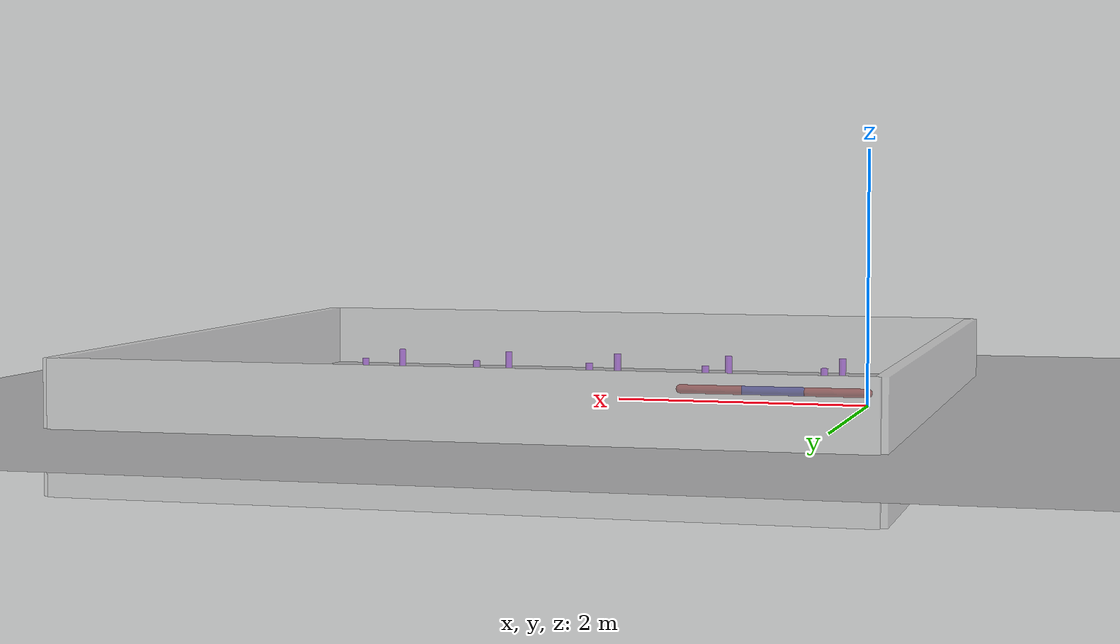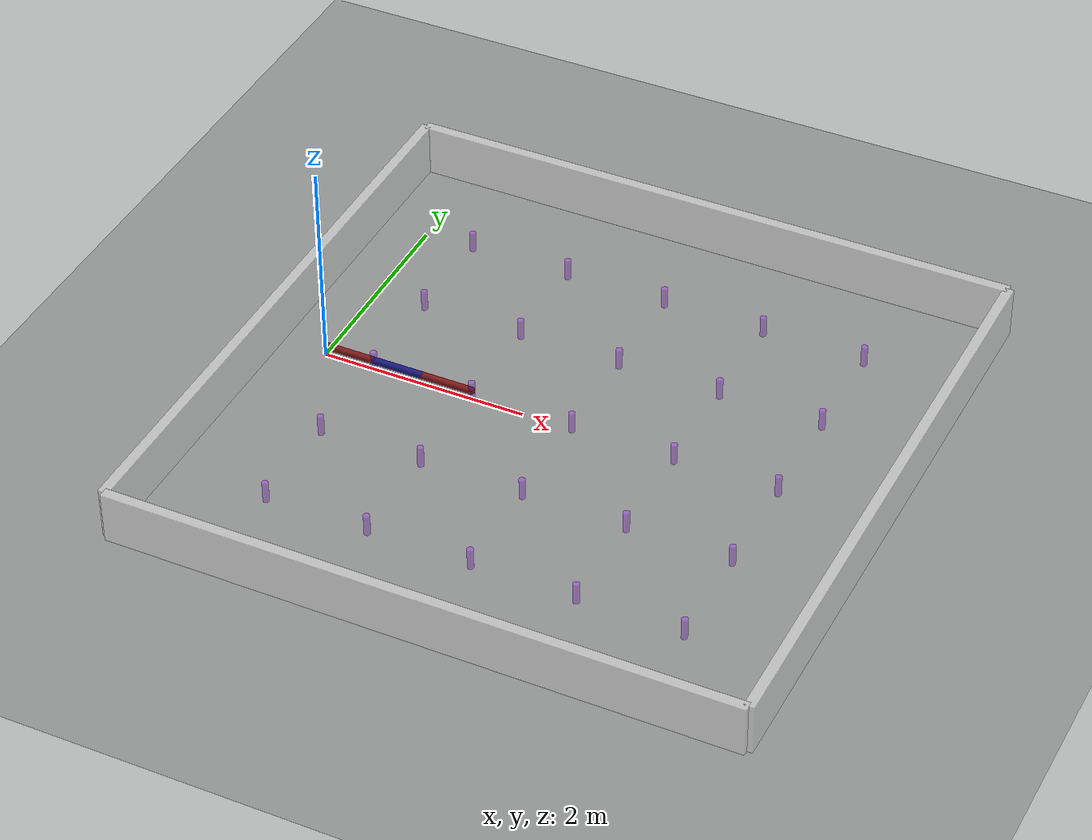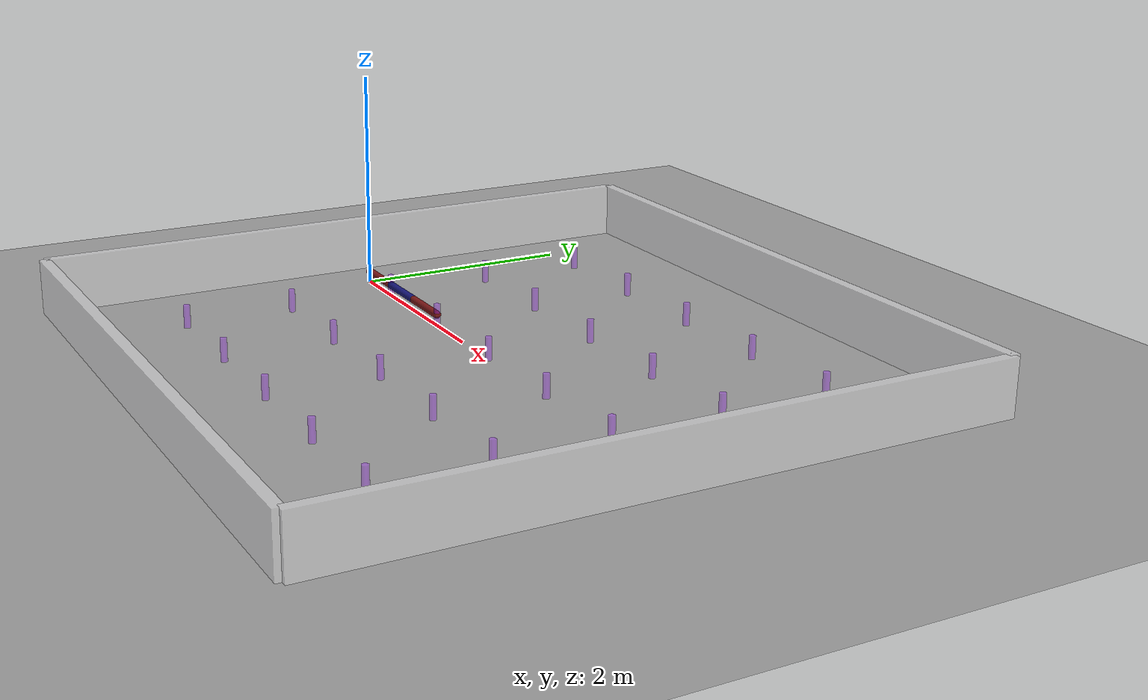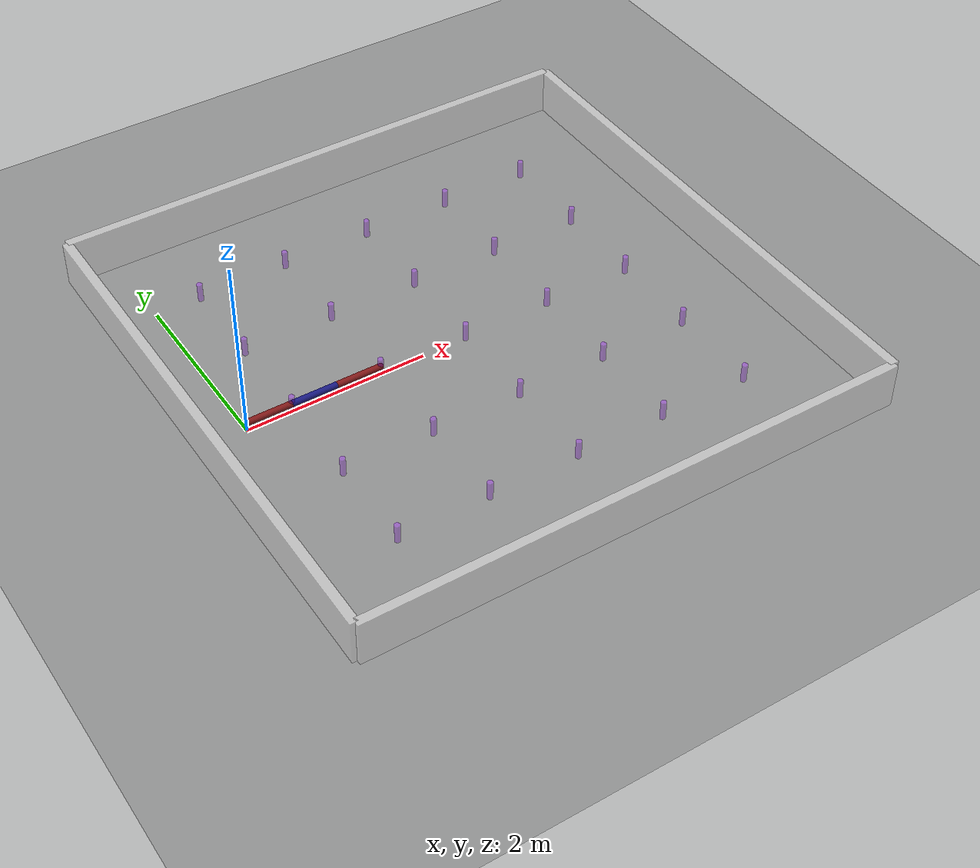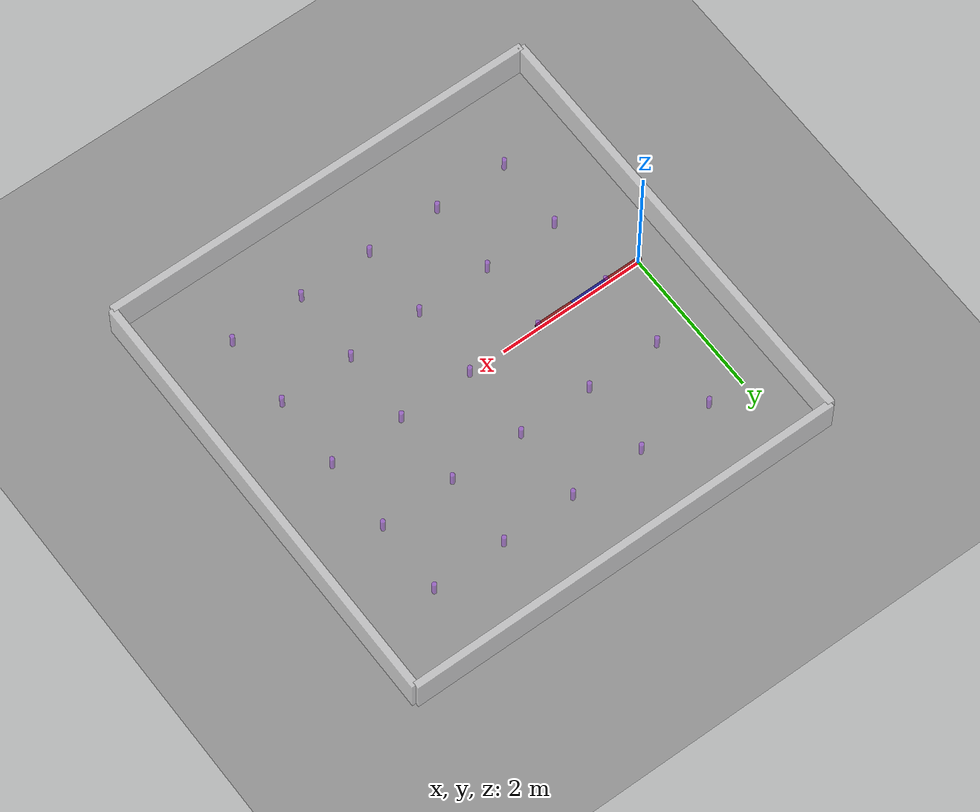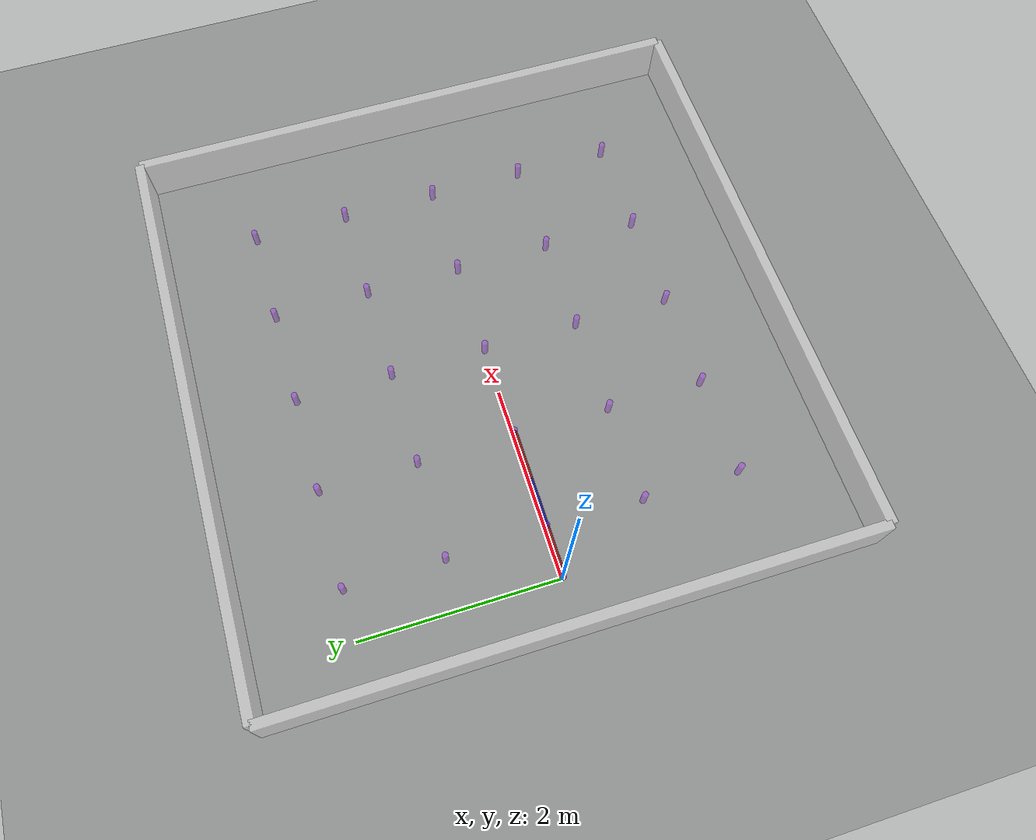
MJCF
<mujoco>
   <compiler angle="radian" />
    <option timestep="0.005" iterations="50" solver="Newton" tolerance="1e-10"/>

    <size njmax="50" nconmax="10" nstack="200"/>
   <visual>
     <headlight ambient=".5 .5 .5" />
   </visual>

    <default>
        <muscle ctrllimited="true" ctrlrange="0 1"/>
    </default>

   <asset>
      <material name="white" rgba="1 1 1 1" />
      <material name="matplane" reflectance="0.3" texture="texplane" texrepeat="1 1" texuniform="true"/>
      <texture type="skybox" builtin="gradient" rgb1="0.6 0.6 0.6" rgb2="0 0 0" width="512" height="512"/>
      <texture name="texplane" type="2d" builtin="checker" rgb1=".25 .25 .25" rgb2=".3 .3 .3" width="512" height="512" mark="cross" markrgb=".8 .8 .8"/>
   </asset>

   <option gravity="0 0 -9.8" />
   <worldbody>
      <light diffuse=".5 .5 .5" pos="0 0 3" dir="0 0 -1"/>
      <geom name="floor" pos="0 0 0" size="0 0 1" type="plane" material="matplane"/>
      <body pos="0 0 .1">
         <joint type="free"/>
         <inertial pos="0 0 0" mass="1" diaginertia="0.01 0.01 0.01"/>
         <geom name="body3" type="capsule" size="0.035" fromto="0 0 0  0.5 0 0" rgba=".5 .1 .1 1"/>
         <body pos="0.5 0 0">
            <inertial pos="0 0 0" mass="1" diaginertia="0.01 0.01 0.01"/>
            <geom name="body2" type="capsule" size="0.035" fromto="0 0 0  0.5 0 0" rgba=".1 .1 .5 1"/>
            <joint name="joint2" type="hinge" pos="0 0 0" limited="true" range="0 120" damping="0.1" />
            <body pos="0.5 0 0">
               <inertial pos="0 0 0" mass="1" diaginertia="0.01 0.01 0.01"/>
               <geom name="body1" type="capsule" size="0.035" fromto="0 0 0  0.5 0 0" rgba=".5 .1 .1 1"/>
               <joint name="joint1" type="hinge" pos="0 0 0" limited="true" range="0 120" damping="0.1"/>
            </body>
         </body>
      </body>
      <body pos="-0.5 0 0">
            <geom name="wall1" type="box" pos="0 0 0" size=".05 3 0.5" rgba=".8 .8 .8 .5" mass="1" group="1"/>
            <geom name="wall2" type="box" pos="6 0 0" size=".05 3 0.5" rgba=".8 .8 .8 .5" mass="1" group="1"/>
            <geom name="wall3" type="box" pos="3 -3 0" size="3 0.05 0.5" rgba=".8 .8 .8 .5" mass="1" group="1"/>
            <geom name="wall4" type="box" pos="3 3 0" size="3 0.05 0.5" rgba=".8 .8 .8 .5" mass="1" group="1"/>

            <geom name="obstacle1.1" type="cylinder" pos="1 -2 0" size=".03 .2" rgba=".5 .1 .8 .5" mass="0" group="1"/>
            <geom name="obstacle1.2" type="cylinder" pos="1 -1 0" size=".03 .2" rgba=".5 .1 .8 .5" mass="0" group="1"/>
            <geom name="obstacle1.3" type="cylinder" pos="1 0 0" size=".03 .2" rgba=".5 .1 .8 .5" mass="0" group="1"/>
            <geom name="obstacle1.4" type="cylinder" pos="1 1 0" size=".03 .2" rgba=".5 .1 .8 .5" mass="0" group="1"/>
            <geom name="obstacle1.5" type="cylinder" pos="1 2 0" size=".03 .2" rgba=".5 .1 .8 .5" mass="0" group="1"/>
            <geom name="obstacle2.1" type="cylinder" pos="2 -2 0" size=".03 .2" rgba=".5 .1 .8 .5" mass="0" group="1"/>
            <geom name="obstacle2.2" type="cylinder" pos="2 -1 0" size=".03 .2" rgba=".5 .1 .8 .5" mass="0" group="1"/>
            <geom name="obstacle2.3" type="cylinder" pos="2 0 0" size=".03 .2" rgba=".5 .1 .8 .5" mass="0" group="1"/>
            <geom name="obstacle2.4" type="cylinder" pos="2 1 0" size=".03 .2" rgba=".5 .1 .8 .5" mass="0" group="1"/>
            <geom name="obstacle2.5" type="cylinder" pos="2 2 0" size=".03 .2" rgba=".5 .1 .8 .5" mass="0" group="1"/>
            <geom name="obstacle3.1" type="cylinder" pos="3 -2 0" size=".03 .2" rgba=".5 .1 .8 .5" mass="0" group="1"/>
            <geom name="obstacle3.2" type="cylinder" pos="3 -1 0" size=".03 .2" rgba=".5 .1 .8 .5" mass="0" group="1"/>
            <geom name="obstacle3.3" type="cylinder" pos="3 0 0" size=".03 .2" rgba=".5 .1 .8 .5" mass="0" group="1"/>
            <geom name="obstacle3.4" type="cylinder" pos="3 1 0" size=".03 .2" rgba=".5 .1 .8 .5" mass="0" group="1"/>
            <geom name="obstacle3.5" type="cylinder" pos="3 2 0" size=".03 .2" rgba=".5 .1 .8 .5" mass="0" group="1"/>
            <geom name="obstacle4.1" type="cylinder" pos="4 -2 0" size=".03 .2" rgba=".5 .1 .8 .5" mass="0" group="1"/>
            <geom name="obstacle4.2" type="cylinder" pos="4 -1 0" size=".03 .2" rgba=".5 .1 .8 .5" mass="0" group="1"/>
            <geom name="obstacle4.3" type="cylinder" pos="4 0 0" size=".03 .2" rgba=".5 .1 .8 .5" mass="0" group="1"/>
            <geom name="obstacle4.4" type="cylinder" pos="4 1 0" size=".03 .2" rgba=".5 .1 .8 .5" mass="0" group="1"/>
            <geom name="obstacle4.5" type="cylinder" pos="4 2 0" size=".03 .2" rgba=".5 .1 .8 .5" mass="0" group="1"/>
             <geom name="obstacle5.1" type="cylinder" pos="5 -2 0" size=".03 .2" rgba=".5 .1 .8 .5" mass="0" group="1"/>
            <geom name="obstacle5.2" type="cylinder" pos="5 -1 0" size=".03 .2" rgba=".5 .1 .8 .5" mass="0" group="1"/>
            <geom name="obstacle5.3" type="cylinder" pos="5 0 0" size=".03 .2" rgba=".5 .1 .8 .5" mass="0" group="1"/>
            <geom name="obstacle5.4" type="cylinder" pos="5 1 0" size=".03 .2" rgba=".5 .1 .8 .5" mass="0" group="1"/>
            <geom name="obstacle5.5" type="cylinder" pos="5 2 0" size=".03 .2" rgba=".5 .1 .8 .5" mass="0" group="1"/>
        </body>
   </worldbody>
   <actuator>
        <motor gear="2000.0" joint="joint1"/>
        <motor gear="2000.0" joint="joint2"/>
    </actuator>
</mujoco>
